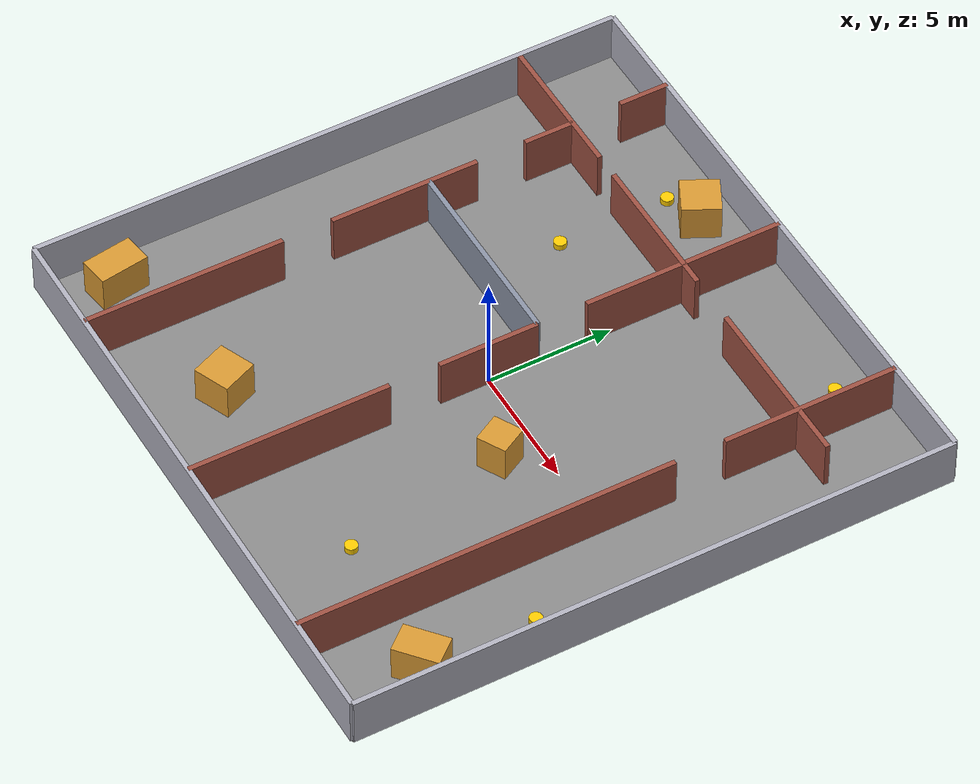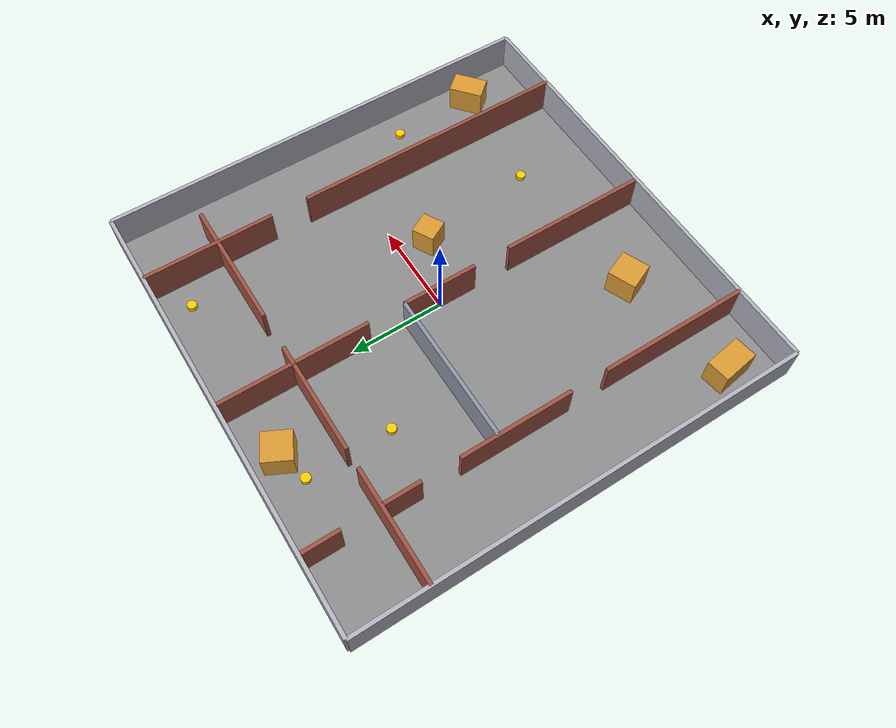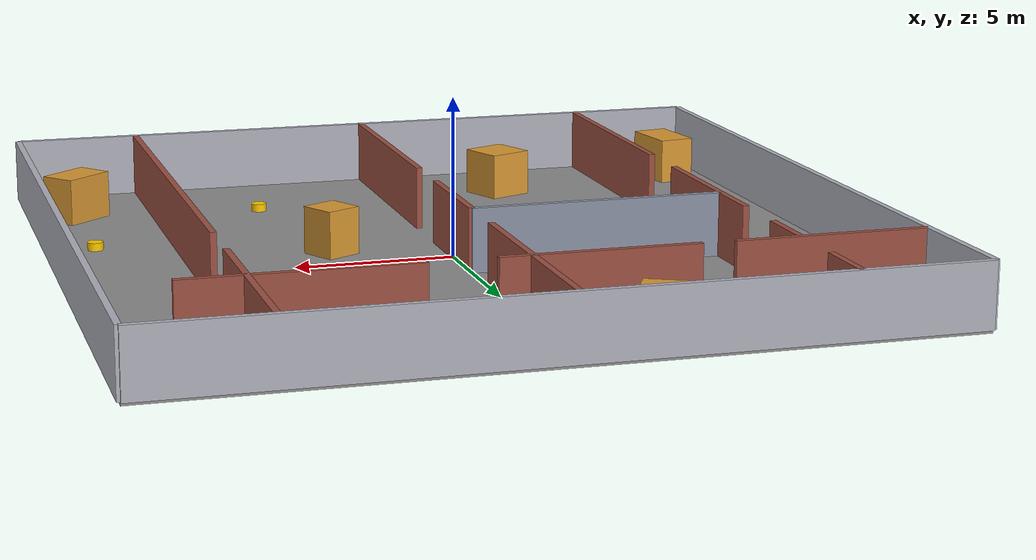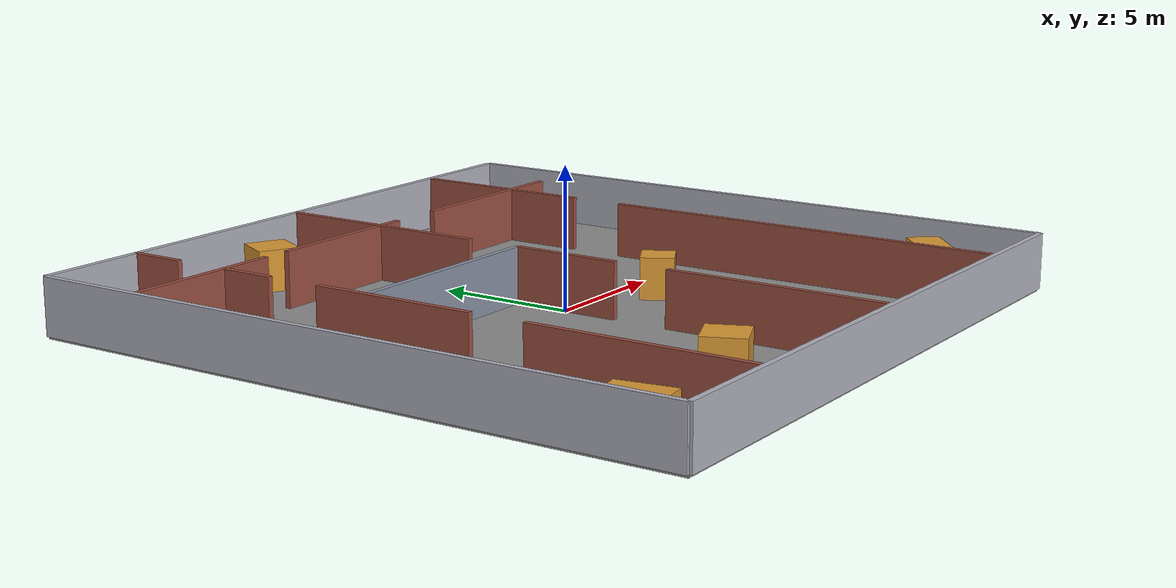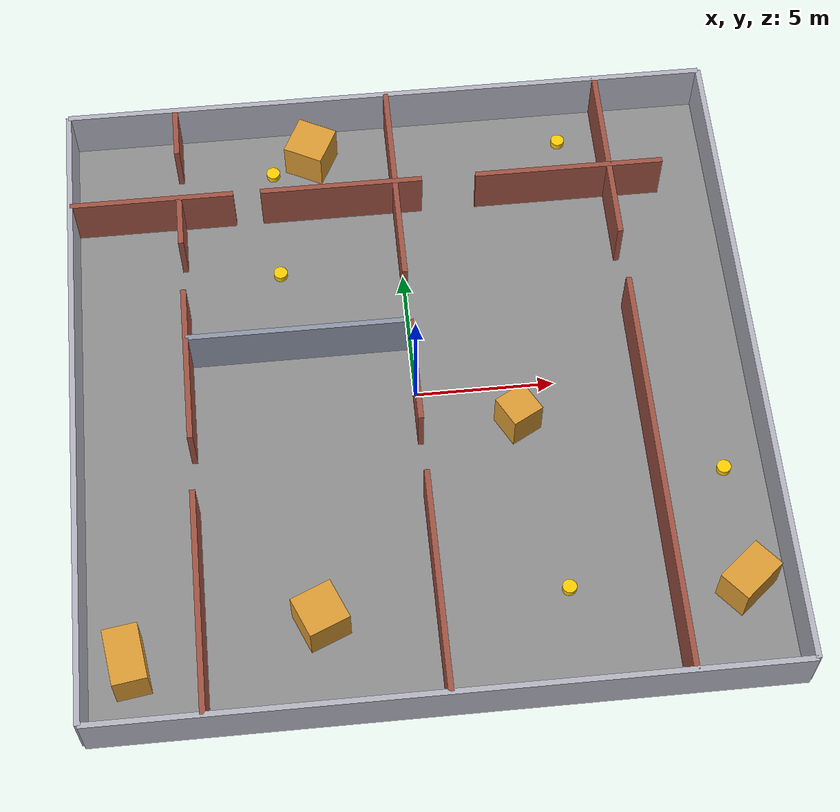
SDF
<?xml version="1.0"?>
<sdf version="1.9">
  <world name="search_room">

    <light type="directional" name="sun">
      <cast_shadows>true</cast_shadows>
      <pose>0 0 10 0 0 0</pose>
      <diffuse>1 1 1 1</diffuse>
      <specular>0.5 0.5 0.5 1</specular>
      <direction>-0.5 0.1 -0.9</direction>
    </light>

    <model name="floor">
      <static>true</static>
      <link name="link">
        <collision name="collision">
          <pose>0 0 -0.05 0 0 0</pose>
          <geometry>
            <box>
              <size>24 24 0.1</size>
            </box>
          </geometry>
        </collision>
        <visual name="visual">
          <pose>0 0 -0.05 0 0 0</pose>
          <geometry>
            <box>
              <size>24 24 0.1</size>
            </box>
          </geometry>
          <material>
            <diffuse>0.55 0.55 0.55 1</diffuse>
            <ambient>0.35 0.35 0.35 1</ambient>
          </material>
        </visual>
      </link>
    </model>

    <model name="wall_south">
      <static>true</static>
      <pose>0 -12 1 0 0 0</pose>
      <link name="link">
        <collision name="collision">
          <geometry>
            <box><size>24 0.2 2</size></box>
          </geometry>
        </collision>
        <visual name="visual">
          <geometry>
            <box><size>24 0.2 2</size></box>
          </geometry>
          <material>
            <diffuse>0.7 0.7 0.75 1</diffuse>
            <ambient>0.4 0.4 0.45 1</ambient>
          </material>
        </visual>
      </link>
    </model>

    <model name="wall_north">
      <static>true</static>
      <pose>0 12 1 0 0 0</pose>
      <link name="link">
        <collision name="collision">
          <geometry>
            <box><size>24 0.2 2</size></box>
          </geometry>
        </collision>
        <visual name="visual">
          <geometry>
            <box><size>24 0.2 2</size></box>
          </geometry>
          <material>
            <diffuse>0.7 0.7 0.75 1</diffuse>
            <ambient>0.4 0.4 0.45 1</ambient>
          </material>
        </visual>
      </link>
    </model>

    <model name="wall_west">
      <static>true</static>
      <pose>-12 0 1 0 0 0</pose>
      <link name="link">
        <collision name="collision">
          <geometry>
            <box><size>0.2 24 2</size></box>
          </geometry>
        </collision>
        <visual name="visual">
          <geometry>
            <box><size>0.2 24 2</size></box>
          </geometry>
          <material>
            <diffuse>0.7 0.7 0.75 1</diffuse>
            <ambient>0.4 0.4 0.45 1</ambient>
          </material>
        </visual>
      </link>
    </model>

    <model name="wall_east">
      <static>true</static>
      <pose>12 0 1 0 0 0</pose>
      <link name="link">
        <collision name="collision">
          <geometry>
            <box><size>0.2 24 2</size></box>
          </geometry>
        </collision>
        <visual name="visual">
          <geometry>
            <box><size>0.2 24 2</size></box>
          </geometry>
          <material>
            <diffuse>0.7 0.7 0.75 1</diffuse>
            <ambient>0.4 0.4 0.45 1</ambient>
          </material>
        </visual>
      </link>
    </model>

    <model name="divider_horizontal_a">
      <static>true</static>
      <pose>-9 8 1 0 0 0</pose>
      <link name="link">
        <collision name="collision">
          <geometry>
            <box><size>6 0.2 2</size></box>
          </geometry>
        </collision>
        <visual name="visual">
          <geometry>
            <box><size>6 0.2 2</size></box>
          </geometry>
          <material>
            <diffuse>0.62 0.32 0.26 1</diffuse>
            <ambient>0.35 0.2 0.15 1</ambient>
          </material>
        </visual>
      </link>
    </model>

    <model name="divider_horizontal_b">
      <static>true</static>
      <pose>-2 8 1 0 0 0</pose>
      <link name="link">
        <collision name="collision">
          <geometry>
            <box><size>6 0.2 2</size></box>
          </geometry>
        </collision>
        <visual name="visual">
          <geometry>
            <box><size>6 0.2 2</size></box>
          </geometry>
          <material>
            <diffuse>0.62 0.32 0.26 1</diffuse>
            <ambient>0.35 0.2 0.15 1</ambient>
          </material>
        </visual>
      </link>
    </model>

    <model name="divider_horizontal_c">
      <static>true</static>
      <pose>6.5 8 1 0 0 0</pose>
      <link name="link">
        <collision name="collision">
          <geometry>
            <box><size>7 0.2 2</size></box>
          </geometry>
        </collision>
        <visual name="visual">
          <geometry>
            <box><size>7 0.2 2</size></box>
          </geometry>
          <material>
            <diffuse>0.62 0.32 0.26 1</diffuse>
            <ambient>0.35 0.2 0.15 1</ambient>
          </material>
        </visual>
      </link>
    </model>

    <model name="divider_vertical_a">
      <static>true</static>
      <pose>-8 -8 1 0 0 0</pose>
      <link name="link">
        <collision name="collision">
          <geometry>
            <box><size>0.2 8 2</size></box>
          </geometry>
        </collision>
        <visual name="visual">
          <geometry>
            <box><size>0.2 8 2</size></box>
          </geometry>
          <material>
            <diffuse>0.62 0.32 0.26 1</diffuse>
            <ambient>0.35 0.2 0.15 1</ambient>
          </material>
        </visual>
      </link>
    </model>

    <model name="divider_vertical_a3">
      <static>true</static>
      <pose>-8 1 1 0 0 0</pose>
      <link name="link">
        <collision name="collision">
          <geometry>
            <box><size>0.2 6 2</size></box>
          </geometry>
        </collision>
        <visual name="visual">
          <geometry>
            <box><size>0.2 6 2</size></box>
          </geometry>
          <material>
            <diffuse>0.62 0.32 0.26 1</diffuse>
            <ambient>0.35 0.2 0.15 1</ambient>
          </material>
        </visual>
      </link>
    </model>

    <model name="divider_vertical_a4">
      <static>true</static>
      <pose>-8 7 1 0 0 0</pose>
      <link name="link">
        <collision name="collision">
          <geometry>
            <box><size>0.2 2 2</size></box>
          </geometry>
        </collision>
        <visual name="visual">
          <geometry>
            <box><size>0.2 2 2</size></box>
          </geometry>
          <material>
            <diffuse>0.62 0.32 0.26 1</diffuse>
            <ambient>0.35 0.2 0.15 1</ambient>
          </material>
        </visual>
      </link>
    </model>

    <model name="divider_vertical_a2">
      <static>true</static>
      <pose>-8 11 1 0 0 0</pose>
      <link name="link">
        <collision name="collision">
          <geometry>
            <box><size>0.2 2 2</size></box>
          </geometry>
        </collision>
        <visual name="visual">
          <geometry>
            <box><size>0.2 2 2</size></box>
          </geometry>
          <material>
            <diffuse>0.62 0.32 0.26 1</diffuse>
            <ambient>0.35 0.2 0.15 1</ambient>
          </material>
        </visual>
      </link>
    </model>

    <model name="divider_vertical_b">
      <static>true</static>
      <pose>0 -8 1 0 0 0</pose>
      <link name="link">
        <collision name="collision">
          <geometry>
            <box><size>0.2 8 2</size></box>
          </geometry>
        </collision>
        <visual name="visual">
          <geometry>
            <box><size>0.2 8 2</size></box>
          </geometry>
          <material>
            <diffuse>0.62 0.32 0.26 1</diffuse>
            <ambient>0.35 0.2 0.15 1</ambient>
          </material>
        </visual>
      </link>
    </model>

    <model name="divider_vertical_b3">
      <static>true</static>
      <pose>0 0 1 0 0 0</pose>
      <link name="link">
        <collision name="collision">
          <geometry>
            <box><size>0.2 4 2</size></box>
          </geometry>
        </collision>
        <visual name="visual">
          <geometry>
            <box><size>0.2 4 2</size></box>
          </geometry>
          <material>
            <diffuse>0.62 0.32 0.26 1</diffuse>
            <ambient>0.35 0.2 0.15 1</ambient>
          </material>
        </visual>
      </link>
    </model>

    <model name="divider_vertical_b2">
      <static>true</static>
      <pose>0 8 1 0 0 0</pose>
      <link name="link">
        <collision name="collision">
          <geometry>
            <box><size>0.2 8 2</size></box>
          </geometry>
        </collision>
        <visual name="visual">
          <geometry>
            <box><size>0.2 8 2</size></box>
          </geometry>
          <material>
            <diffuse>0.62 0.32 0.26 1</diffuse>
            <ambient>0.35 0.2 0.15 1</ambient>
          </material>
        </visual>
      </link>
    </model>

    <model name="divider_vertical_c">
      <static>true</static>
      <pose>8 -4.5 1 0 0 0</pose>
      <link name="link">
        <collision name="collision">
          <geometry>
            <box><size>0.2 15 2</size></box>
          </geometry>
        </collision>
        <visual name="visual">
          <geometry>
            <box><size>0.2 15 2</size></box>
          </geometry>
          <material>
            <diffuse>0.62 0.32 0.26 1</diffuse>
            <ambient>0.35 0.2 0.15 1</ambient>
          </material>
        </visual>
      </link>
    </model>

    <model name="divider_vertical_c2">
      <static>true</static>
      <pose>8 8.5 1 0 0 0</pose>
      <link name="link">
        <collision name="collision">
          <geometry>
            <box><size>0.2 7 2</size></box>
          </geometry>
        </collision>
        <visual name="visual">
          <geometry>
            <box><size>0.2 7 2</size></box>
          </geometry>
          <material>
            <diffuse>0.62 0.32 0.26 1</diffuse>
            <ambient>0.35 0.2 0.15 1</ambient>
          </material>
        </visual>
      </link>
    </model>

    <!-- L-shaped wall, bottom-left      -->
    <!-- Horizontal from x=-8 to x=0     -->
    <model name="l_wall_bottom_left_h">
      <static>true</static>
      <pose>-4 2 1 0 0 0</pose>
      <link name="link">
        <collision name="collision">
          <geometry>
            <box><size>8 0.2 2</size></box>
          </geometry>
        </collision>
        <visual name="visual">
          <geometry>
            <box><size>8 0.2 2</size></box>
          </geometry>
          <material>
            <diffuse>0.55 0.58 0.65 1</diffuse>
            <ambient>0.3 0.32 0.38 1</ambient>
          </material>
        </visual>
      </link>
    </model>

    <model name="obstacle_1">
      <static>true</static>
      <pose>-4 -8.5 0.75 0 0 0.4</pose>
      <link name="link">
        <collision name="collision">
          <geometry>
            <box><size>1.5 1.5 1.5</size></box>
          </geometry>
        </collision>
        <visual name="visual">
          <geometry>
            <box><size>1.5 1.5 1.5</size></box>
          </geometry>
          <material>
            <diffuse>0.85 0.6 0.2 1</diffuse>
            <ambient>0.45 0.3 0.1 1</ambient>
          </material>
        </visual>
      </link>
    </model>

    <model name="obstacle_2">
      <static>true</static>
      <pose>10.5 -8.5 0.75 0 0 0.7</pose>
      <link name="link">
        <collision name="collision">
          <geometry>
            <box><size>1.8 1.2 1.5</size></box>
          </geometry>
        </collision>
        <visual name="visual">
          <geometry>
            <box><size>1.8 1.2 1.5</size></box>
          </geometry>
          <material>
            <diffuse>0.85 0.6 0.2 1</diffuse>
            <ambient>0.45 0.3 0.1 1</ambient>
          </material>
        </visual>
      </link>
    </model>

    <model name="obstacle_3">
      <static>true</static>
      <pose>-3 10.5 0.75 0 0 1.1</pose>
      <link name="link">
        <collision name="collision">
          <geometry>
            <box><size>1.5 1.5 1.5</size></box>
          </geometry>
        </collision>
        <visual name="visual">
          <geometry>
            <box><size>1.5 1.5 1.5</size></box>
          </geometry>
          <material>
            <diffuse>0.85 0.6 0.2 1</diffuse>
            <ambient>0.45 0.3 0.1 1</ambient>
          </material>
        </visual>
      </link>
    </model>

    <model name="obstacle_4">
      <static>true</static>
      <pose>-10.5 -9.5 0.75 0 0 0.15</pose>
      <link name="link">
        <collision name="collision">
          <geometry>
            <box><size>1.2 2 1.5</size></box>
          </geometry>
        </collision>
        <visual name="visual">
          <geometry>
            <box><size>1.2 2 1.5</size></box>
          </geometry>
          <material>
            <diffuse>0.85 0.6 0.2 1</diffuse>
            <ambient>0.45 0.3 0.1 1</ambient>
          </material>
        </visual>
      </link>
    </model>

    <model name="obstacle_5">
      <static>true</static>
      <pose>3.5 -1.5 0.75 0 0 0.5</pose>
      <link name="link">
        <collision name="collision">
          <geometry>
            <box><size>1.2 1.2 1.5</size></box>
          </geometry>
        </collision>
        <visual name="visual">
          <geometry>
            <box><size>1.2 1.2 1.5</size></box>
          </geometry>
          <material>
            <diffuse>0.85 0.6 0.2 1</diffuse>
            <ambient>0.45 0.3 0.1 1</ambient>
          </material>
        </visual>
      </link>
    </model>

    <include>
      <uri>model://target</uri>
      <name>target_1</name>
      <pose>4.5 -8 0 0 0 0</pose>
    </include>

    <include>
      <uri>model://target</uri>
      <name>target_2</name>
      <pose>-4.5 10 0 0 0 0</pose>
    </include>

    <include>
      <uri>model://target</uri>
      <name>target_3</name>
      <pose>-4.5 5.5 0 0 0 0</pose>
    </include>

    <include>
      <uri>model://target</uri>
      <name>target_4</name>
      <pose>6.5 10.5 0 0 0 0</pose>
    </include>

    <include>
      <uri>model://target</uri>
      <name>target_5</name>
      <pose>10.5 -4 0 0 0 0</pose>
    </include>

  </world>
</sdf>

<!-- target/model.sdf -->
<sdf version="1.9">
  <model name="target">
    <static>true</static>
    <link name="target_link">
      <collision name="collision">
        <geometry>
          <cylinder>
            <radius>0.25</radius>
            <length>0.5</length>
          </cylinder>
        </geometry>
      </collision>
      <visual name="visual">
        <geometry>
          <cylinder>
            <radius>0.25</radius>
            <length>0.5</length>
          </cylinder>
        </geometry>
        <material>
          <diffuse>1 0.8 0 1</diffuse>
          <ambient>0.6 0.5 0 1</ambient>
        </material>
      </visual>
    </link>
  </model>
</sdf>
